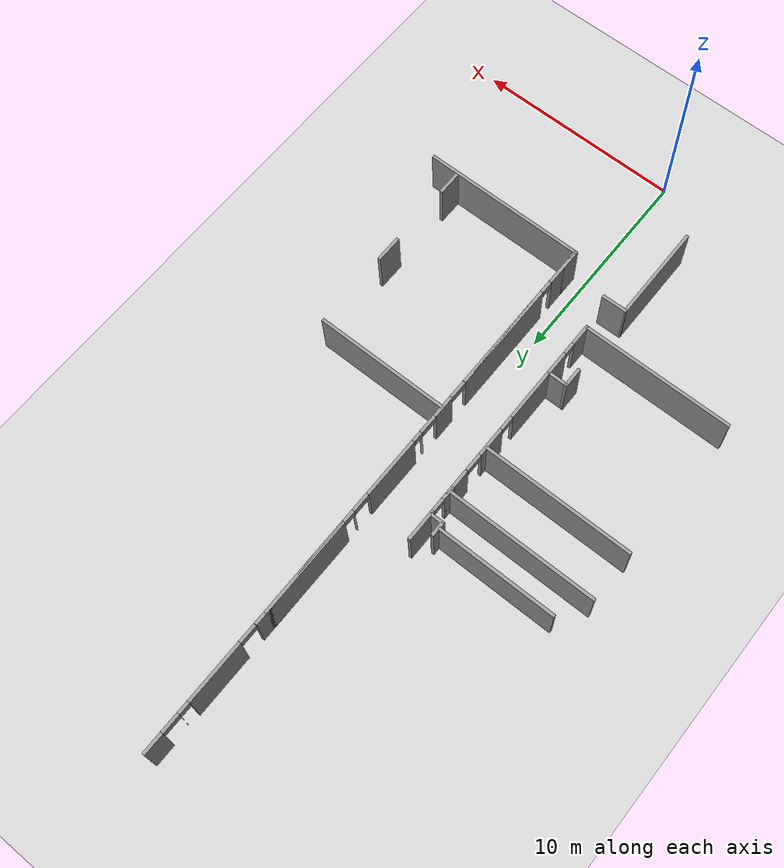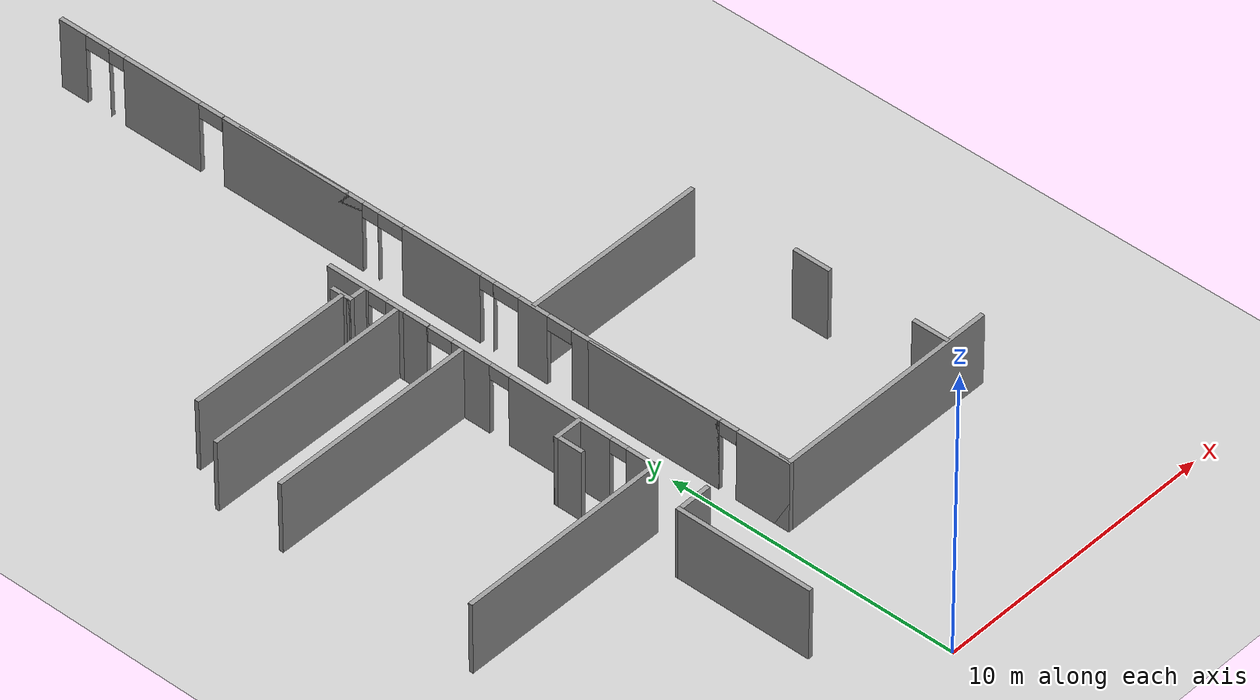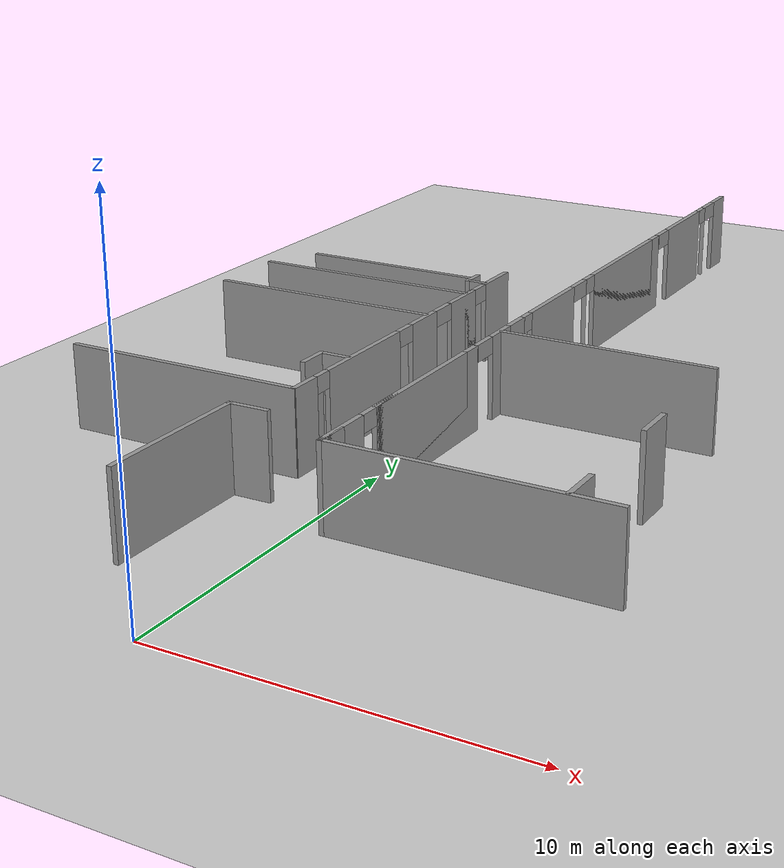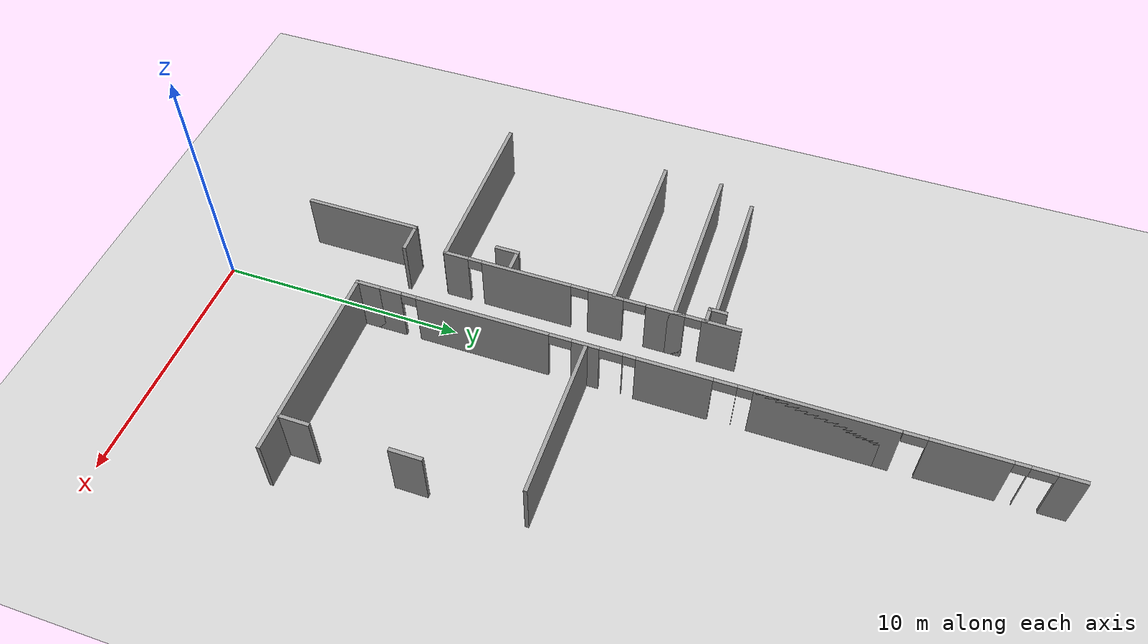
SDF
<sdf version="1.6">
 <world name="default">
  <model name="ground_plane">
   <static>1</static>
   <link name="link">
    <collision name="collision">
     <geometry><plane><normal>0 0 1</normal><size>100 100</size></plane></geometry>
     <surface>
      <contact><collide_bitmask>65535</collide_bitmask></contact>
      <friction><ode><mu>100</mu><mu2>50</mu2></ode></friction>
     </surface>
    </collision>
    <visual name="visual">
     <cast_shadows>0</cast_shadows>
     <geometry><plane><normal>0 0 1</normal><size>100 100</size></plane></geometry>
     <material>
      <script><uri>file://media/materials/scripts/gazebo.material</uri><name>Gazebo/Grey</name></script>
     </material>
    </visual>
   </link>
  </model>
  <model name="Tsudanuma_2-3-with_door">
   <pose>11.7222 12.8329 0 0 -0 0</pose>
   <link name="Wall_121">
    <collision name="Wall_121_Collision">
     <geometry><box><size>7.32925 0.15 2.5</size></box></geometry>
     <pose>0 0 1.25 0 -0 0</pose>
    </collision>
    <visual name="Wall_121_Visual">
     <pose>0 0 1.25 0 -0 0</pose>
     <geometry><box><size>7.32925 0.15 2.5</size></box></geometry>
     <material>
      <script><uri>file://media/materials/scripts/gazebo.material</uri><name>Gazebo/Grey</name></script>
      <ambient>1 1 1 1</ambient>
     </material>
     <meta><layer>0</layer></meta>
    </visual>
    <pose>-17.1797 -3.82583 0 0 -0 0</pose>
   </link>
   <link name="Wall_122">
    <pose>-13.5711 2.11814 0 0 -0 1.5708</pose>
    <visual name="Wall_122_Visual_0">
     <pose>-5.48524 0 1.25 0 -0 0</pose>
     <geometry><box><size>1.02952 0.15 2.5</size></box></geometry>
     <material>
      <script><uri>file://media/materials/scripts/gazebo.material</uri><name>Gazebo/Grey</name></script>
      <ambient>1 1 1 1</ambient>
     </material>
     <meta><layer>0</layer></meta>
    </visual>
    <collision name="Wall_122_Collision_0">
     <geometry><box><size>1.02952 0.15 2.5</size></box></geometry>
     <pose>-5.48524 0 1.25 0 -0 0</pose>
    </collision>
    <visual name="Wall_122_Visual_1">
     <pose>-2.55315 0 1.25 0 -0 0</pose>
     <geometry><box><size>3.68287 0.15 2.5</size></box></geometry>
     <material>
      <script><uri>file://media/materials/scripts/gazebo.material</uri><name>Gazebo/Grey</name></script>
      <ambient>1 1 1 1</ambient>
     </material>
     <meta><layer>0</layer></meta>
    </visual>
    <collision name="Wall_122_Collision_1">
     <geometry><box><size>3.68287 0.15 2.5</size></box></geometry>
     <pose>-2.55315 0 1.25 0 -0 0</pose>
    </collision>
    <visual name="Wall_122_Visual_2">
     <pose>0.697642 0 1.25 0 -0 0</pose>
     <geometry><box><size>1.40764 0.15 2.5</size></box></geometry>
     <material>
      <script><uri>file://media/materials/scripts/gazebo.material</uri><name>Gazebo/Grey</name></script>
      <ambient>1 1 1 1</ambient>
     </material>
     <meta><layer>0</layer></meta>
    </visual>
    <collision name="Wall_122_Collision_2">
     <geometry><box><size>1.40764 0.15 2.5</size></box></geometry>
     <pose>0.697642 0 1.25 0 -0 0</pose>
    </collision>
    <visual name="Wall_122_Visual_3">
     <pose>3.06038 0 1.25 0 -0 0</pose>
     <geometry><box><size>1.51784 0.15 2.5</size></box></geometry>
     <material>
      <script><uri>file://media/materials/scripts/gazebo.material</uri><name>Gazebo/Grey</name></script>
      <ambient>1 1 1 1</ambient>
     </material>
     <meta><layer>0</layer></meta>
    </visual>
    <collision name="Wall_122_Collision_3">
     <geometry><box><size>1.51784 0.15 2.5</size></box></geometry>
     <pose>3.06038 0 1.25 0 -0 0</pose>
    </collision>
    <visual name="Wall_122_Visual_4">
     <pose>3.49469 0 1.25 0 -0 0</pose>
     <geometry><box><size>0.649232 0.15 2.5</size></box></geometry>
     <material>
      <script><uri>file://media/materials/scripts/gazebo.material</uri><name>Gazebo/Grey</name></script>
      <ambient>1 1 1 1</ambient>
     </material>
     <meta><layer>0</layer></meta>
    </visual>
    <collision name="Wall_122_Collision_4">
     <geometry><box><size>0.649232 0.15 2.5</size></box></geometry>
     <pose>3.49469 0 1.25 0 -0 0</pose>
    </collision>
    <visual name="Wall_122_Visual_5">
     <pose>5.23649 0 1.25 0 -0 0</pose>
     <geometry><box><size>1.52702 0.15 2.5</size></box></geometry>
     <material>
      <script><uri>file://media/materials/scripts/gazebo.material</uri><name>Gazebo/Grey</name></script>
      <ambient>1 1 1 1</ambient>
     </material>
     <meta><layer>0</layer></meta>
    </visual>
    <collision name="Wall_122_Collision_5">
     <geometry><box><size>1.52702 0.15 2.5</size></box></geometry>
     <pose>5.23649 0 1.25 0 -0 0</pose>
    </collision>
    <visual name="Wall_122_Visual_6">
     <pose>-4.68253 0 2.25 0 -0 0</pose>
     <geometry><box><size>0.575893 0.15 0.5</size></box></geometry>
     <material>
      <script><uri>file://media/materials/scripts/gazebo.material</uri><name>Gazebo/Grey</name></script>
      <ambient>1 1 1 1</ambient>
     </material>
     <meta><layer>0</layer></meta>
    </visual>
    <collision name="Wall_122_Collision_6">
     <geometry><box><size>0.575893 0.15 0.5</size></box></geometry>
     <pose>-4.68253 0 2.25 0 -0 0</pose>
    </collision>
    <visual name="Wall_122_Visual_7">
     <pose>-0.358947 0 2.25 0 -0 0</pose>
     <geometry><box><size>0.705536 0.15 0.5</size></box></geometry>
     <material>
      <script><uri>file://media/materials/scripts/gazebo.material</uri><name>Gazebo/Grey</name></script>
      <ambient>1 1 1 1</ambient>
     </material>
     <meta><layer>0</layer></meta>
    </visual>
    <collision name="Wall_122_Collision_7">
     <geometry><box><size>0.705536 0.15 0.5</size></box></geometry>
     <pose>-0.358947 0 2.25 0 -0 0</pose>
    </collision>
    <visual name="Wall_122_Visual_8">
     <pose>1.83577 0 2.25 0 -0 0</pose>
     <geometry><box><size>0.868607 0.15 0.5</size></box></geometry>
     <material>
      <script><uri>file://media/materials/scripts/gazebo.material</uri><name>Gazebo/Grey</name></script>
      <ambient>1 1 1 1</ambient>
     </material>
     <meta><layer>0</layer></meta>
    </visual>
    <collision name="Wall_122_Collision_8">
     <geometry><box><size>0.868607 0.15 0.5</size></box></geometry>
     <pose>1.83577 0 2.25 0 -0 0</pose>
    </collision>
    <visual name="Wall_122_Visual_9">
     <pose>4.14614 0 2.25 0 -0 0</pose>
     <geometry><box><size>0.653679 0.15 0.5</size></box></geometry>
     <material>
      <script><uri>file://media/materials/scripts/gazebo.material</uri><name>Gazebo/Grey</name></script>
      <ambient>1 1 1 1</ambient>
     </material>
     <meta><layer>0</layer></meta>
    </visual>
    <collision name="Wall_122_Collision_9">
     <geometry><box><size>0.653679 0.15 0.5</size></box></geometry>
     <pose>4.14614 0 2.25 0 -0 0</pose>
    </collision>
    <visual name="Wall_122_Visual_10">
     <pose>4.14614 0 2.25 0 -0 0</pose>
     <geometry><box><size>0.653679 0.15 0.5</size></box></geometry>
     <material>
      <script><uri>file://media/materials/scripts/gazebo.material</uri><name>Gazebo/Grey</name></script>
      <ambient>1 1 1 1</ambient>
     </material>
     <meta><layer>0</layer></meta>
    </visual>
    <collision name="Wall_122_Collision_10">
     <geometry><box><size>0.653679 0.15 0.5</size></box></geometry>
     <pose>4.14614 0 2.25 0 -0 0</pose>
    </collision>
   </link>
   <link name="Wall_135">
    <collision name="Wall_135_Collision">
     <geometry><box><size>1 0.15 2.5</size></box></geometry>
     <pose>0 0 1.25 0 -0 0</pose>
    </collision>
    <visual name="Wall_135_Visual">
     <pose>0 0 1.25 0 -0 0</pose>
     <geometry><box><size>1 0.15 2.5</size></box></geometry>
     <material>
      <script><uri>file://media/materials/scripts/gazebo.material</uri><name>Gazebo/Grey</name></script>
      <ambient>1 1 1 1</ambient>
     </material>
     <meta><layer>0</layer></meta>
    </visual>
    <pose>-14.4819 -1.56838 0 0 -0 1.5708</pose>
   </link>
   <link name="Wall_136">
    <collision name="Wall_136_Collision">
     <geometry><box><size>1 0.15 2.5</size></box></geometry>
     <pose>0 0 1.25 0 -0 0</pose>
    </collision>
    <visual name="Wall_136_Visual">
     <pose>0 0 1.25 0 -0 0</pose>
     <geometry><box><size>1 0.15 2.5</size></box></geometry>
     <material>
      <script><uri>file://media/materials/scripts/gazebo.material</uri><name>Gazebo/Grey</name></script>
      <ambient>1 1 1 1</ambient>
     </material>
     <meta><layer>0</layer></meta>
    </visual>
    <pose>-14.0569 -1.14338 0 0 -0 0</pose>
   </link>
   <link name="Wall_158">
    <collision name="Wall_158_Collision">
     <geometry><box><size>1.25 0.15 2.5</size></box></geometry>
     <pose>0 0 1.25 0 -0 0</pose>
    </collision>
    <visual name="Wall_158_Visual">
     <pose>0 0 1.25 0 -0 0</pose>
     <geometry><box><size>1.25 0.15 2.5</size></box></geometry>
     <material>
      <script><uri>file://media/materials/scripts/gazebo.material</uri><name>Gazebo/Grey</name></script>
      <ambient>1 1 1 1</ambient>
     </material>
     <meta><layer>0</layer></meta>
    </visual>
    <pose>-13.8574 -5.4671 0 0 -0 -3.12445</pose>
   </link>
   <link name="Wall_163">
    <collision name="Wall_163_Collision">
     <geometry><box><size>4.75 0.15 2.5</size></box></geometry>
     <pose>0 0 1.25 0 -0 0</pose>
    </collision>
    <visual name="Wall_163_Visual">
     <pose>0 0 1.25 0 -0 0</pose>
     <geometry><box><size>4.75 0.15 2.5</size></box></geometry>
     <material>
      <script><uri>file://media/materials/scripts/gazebo.material</uri><name>Gazebo/Grey</name></script>
      <ambient>1 1 1 1</ambient>
     </material>
     <meta><layer>0</layer></meta>
    </visual>
    <pose>-14.4074 -7.77654 0 0 -0 -1.5708</pose>
   </link>
   <link name="Wall_173">
    <collision name="Wall_173_Collision">
     <geometry><box><size>6.5 0.15 2.5</size></box></geometry>
     <pose>0 0 1.25 0 -0 0</pose>
    </collision>
    <visual name="Wall_173_Visual">
     <pose>0 0 1.25 0 -0 0</pose>
     <geometry><box><size>6.5 0.15 2.5</size></box></geometry>
     <material>
      <script><uri>file://media/materials/scripts/gazebo.material</uri><name>Gazebo/Grey</name></script>
      <ambient>1 1 1 1</ambient>
     </material>
     <meta><layer>0</layer></meta>
    </visual>
    <pose>-7.81856 2.84875 0 0 -0 0</pose>
   </link>
   <link name="Wall_427">
    <collision name="Wall_427_Collision">
     <geometry><box><size>1.25 0.15 2.5</size></box></geometry>
     <pose>0 0 1.25 0 -0 0</pose>
    </collision>
    <visual name="Wall_427_Visual">
     <pose>0 0 1.25 0 -0 0</pose>
     <geometry><box><size>1.25 0.15 2.5</size></box></geometry>
     <material>
      <script><uri>file://media/materials/scripts/gazebo.material</uri><name>Gazebo/Grey</name></script>
      <ambient>1 1 1 1</ambient>
     </material>
     <meta><layer>0</layer></meta>
    </visual>
    <pose>-4.58021 -5.82388 0 0 -0 1.5708</pose>
   </link>
   <link name="Wall_431">
    <collision name="Wall_431_Collision">
     <geometry><box><size>1.3 0.15 2.5</size></box></geometry>
     <pose>0 0 1.25 0 -0 0</pose>
    </collision>
    <visual name="Wall_431_Visual">
     <pose>0 0 1.25 0 -0 0</pose>
     <geometry><box><size>1.3 0.15 2.5</size></box></geometry>
     <material>
      <script><uri>file://media/materials/scripts/gazebo.material</uri><name>Gazebo/Grey</name></script>
      <ambient>1 1 1 1</ambient>
     </material>
     <meta><layer>0</layer></meta>
    </visual>
    <pose>-4.58533 -1.53514 0 0 -0 1.5708</pose>
   </link>
   <link name="Wall_511">
    <collision name="Wall_511_Collision">
     <geometry><box><size>7.25 0.15 2.5</size></box></geometry>
     <pose>0 0 1.25 0 -0 0</pose>
    </collision>
    <visual name="Wall_511_Visual">
     <pose>0 0 1.25 0 -0 0</pose>
     <geometry><box><size>7.25 0.15 2.5</size></box></geometry>
     <material>
      <script><uri>file://media/materials/scripts/gazebo.material</uri><name>Gazebo/Grey</name></script>
      <ambient>1 1 1 1</ambient>
     </material>
     <meta><layer>0</layer></meta>
    </visual>
    <pose>-17.2038 3.11898 0 0 -0 0</pose>
   </link>
   <link name="Wall_515">
    <collision name="Wall_515_Collision">
     <geometry><box><size>7.25 0.15 2.5</size></box></geometry>
     <pose>0 0 1.25 0 -0 0</pose>
    </collision>
    <visual name="Wall_515_Visual">
     <pose>0 0 1.25 0 -0 0</pose>
     <geometry><box><size>7.25 0.15 2.5</size></box></geometry>
     <material>
      <script><uri>file://media/materials/scripts/gazebo.material</uri><name>Gazebo/Grey</name></script>
      <ambient>1 1 1 1</ambient>
     </material>
     <meta><layer>0</layer></meta>
    </visual>
    <pose>-17.1744 5.52177 0 0 -0 0</pose>
   </link>
   <link name="Wall_517">
    <collision name="Wall_517_Collision">
     <geometry><box><size>5.75 0.15 2.5</size></box></geometry>
     <pose>0 0 1.25 0 -0 0</pose>
    </collision>
    <visual name="Wall_517_Visual">
     <pose>0 0 1.25 0 -0 0</pose>
     <geometry><box><size>5.75 0.15 2.5</size></box></geometry>
     <material>
      <script><uri>file://media/materials/scripts/gazebo.material</uri><name>Gazebo/Grey</name></script>
      <ambient>1 1 1 1</ambient>
     </material>
     <meta><layer>0</layer></meta>
    </visual>
    <pose>-17.0841 7.01061 0 0 -0 0</pose>
   </link>
   <link name="Wall_524">
    <collision name="Wall_524_Collision">
     <geometry><box><size>0.75 0.15 2.5</size></box></geometry>
     <pose>0 0 1.25 0 -0 0</pose>
    </collision>
    <visual name="Wall_524_Visual">
     <pose>0 0 1.25 0 -0 0</pose>
     <geometry><box><size>0.75 0.15 2.5</size></box></geometry>
     <material>
      <script><uri>file://media/materials/scripts/gazebo.material</uri><name>Gazebo/Grey</name></script>
      <ambient>1 1 1 1</ambient>
     </material>
     <meta><layer>0</layer></meta>
    </visual>
    <pose>-14.1897 7.04966 0 0 -0 -1.5708</pose>
   </link>
   <link name="Wall_525">
    <collision name="Wall_525_Collision">
     <geometry><box><size>0.75 0.15 2.5</size></box></geometry>
     <pose>0 0 1.25 0 -0 0</pose>
    </collision>
    <visual name="Wall_525_Visual">
     <pose>0 0 1.25 0 -0 0</pose>
     <geometry><box><size>0.75 0.15 2.5</size></box></geometry>
     <material>
      <script><uri>file://media/materials/scripts/gazebo.material</uri><name>Gazebo/Grey</name></script>
      <ambient>1 1 1 1</ambient>
     </material>
     <meta><layer>0</layer></meta>
    </visual>
    <pose>-13.8897 6.74966 0 0 -0 0</pose>
   </link>
   <link name="Wall_72">
    <pose>-11.0721 7.11004 0 0 -0 -1.5708</pose>
    <visual name="Wall_72_Visual_0">
     <pose>-13.1162 0 1.25 0 -0 0</pose>
     <geometry><box><size>1.01758 0.15 2.5</size></box></geometry>
     <material>
      <script><uri>file://media/materials/scripts/gazebo.material</uri><name>Gazebo/Grey</name></script>
      <ambient>1 1 1 1</ambient>
     </material>
     <meta><layer>0</layer></meta>
    </visual>
    <collision name="Wall_72_Collision_0">
     <geometry><box><size>1.01758 0.15 2.5</size></box></geometry>
     <pose>-13.1162 0 1.25 0 -0 0</pose>
    </collision>
    <visual name="Wall_72_Visual_1">
     <pose>-11.7069 0 1.25 0 -0 0</pose>
     <geometry><box><size>0.001019 0.15 2.5</size></box></geometry>
     <material>
      <script><uri>file://media/materials/scripts/gazebo.material</uri><name>Gazebo/Grey</name></script>
      <ambient>1 1 1 1</ambient>
     </material>
     <meta><layer>0</layer></meta>
    </visual>
    <collision name="Wall_72_Collision_1">
     <geometry><box><size>0.001019 0.15 2.5</size></box></geometry>
     <pose>-11.7069 0 1.25 0 -0 0</pose>
    </collision>
    <visual name="Wall_72_Visual_2">
     <pose>-9.69096 0 1.25 0 -0 0</pose>
     <geometry><box><size>2.90502 0.15 2.5</size></box></geometry>
     <material>
      <script><uri>file://media/materials/scripts/gazebo.material</uri><name>Gazebo/Grey</name></script>
      <ambient>1 1 1 1</ambient>
     </material>
     <meta><layer>0</layer></meta>
    </visual>
    <collision name="Wall_72_Collision_2">
     <geometry><box><size>2.90502 0.15 2.5</size></box></geometry>
     <pose>-9.69096 0 1.25 0 -0 0</pose>
    </collision>
    <visual name="Wall_72_Visual_3">
     <pose>-4.69323 0 1.25 0 -0 0</pose>
     <geometry><box><size>5.29044 0.15 2.5</size></box></geometry>
     <material>
      <script><uri>file://media/materials/scripts/gazebo.material</uri><name>Gazebo/Grey</name></script>
      <ambient>1 1 1 1</ambient>
     </material>
     <meta><layer>0</layer></meta>
    </visual>
    <collision name="Wall_72_Collision_3">
     <geometry><box><size>5.29044 0.15 2.5</size></box></geometry>
     <pose>-4.69323 0 1.25 0 -0 0</pose>
    </collision>
    <visual name="Wall_72_Visual_4">
     <pose>-4.40478 0 1.25 0 -0 0</pose>
     <geometry><box><size>4.71353 0.15 2.5</size></box></geometry>
     <material>
      <script><uri>file://media/materials/scripts/gazebo.material</uri><name>Gazebo/Grey</name></script>
      <ambient>1 1 1 1</ambient>
     </material>
     <meta><layer>0</layer></meta>
    </visual>
    <collision name="Wall_72_Collision_4">
     <geometry><box><size>4.71353 0.15 2.5</size></box></geometry>
     <pose>-4.40478 0 1.25 0 -0 0</pose>
    </collision>
    <visual name="Wall_72_Visual_5">
     <pose>-1.45865 0 1.25 0 -0 0</pose>
     <geometry><box><size>0.001018 0.15 2.5</size></box></geometry>
     <material>
      <script><uri>file://media/materials/scripts/gazebo.material</uri><name>Gazebo/Grey</name></script>
      <ambient>1 1 1 1</ambient>
     </material>
     <meta><layer>0</layer></meta>
    </visual>
    <collision name="Wall_72_Collision_5">
     <geometry><box><size>0.001018 0.15 2.5</size></box></geometry>
     <pose>-1.45865 0 1.25 0 -0 0</pose>
    </collision>
    <visual name="Wall_72_Visual_6">
     <pose>0.89437 0 1.25 0 -0 0</pose>
     <geometry><box><size>2.90502 0.15 2.5</size></box></geometry>
     <material>
      <script><uri>file://media/materials/scripts/gazebo.material</uri><name>Gazebo/Grey</name></script>
      <ambient>1 1 1 1</ambient>
     </material>
     <meta><layer>0</layer></meta>
    </visual>
    <collision name="Wall_72_Collision_6">
     <geometry><box><size>2.90502 0.15 2.5</size></box></geometry>
     <pose>0.89437 0 1.25 0 -0 0</pose>
    </collision>
    <visual name="Wall_72_Visual_7">
     <pose>2.84549 0 1.25 0 -0 0</pose>
     <geometry><box><size>0.001017 0.15 2.5</size></box></geometry>
     <material>
      <script><uri>file://media/materials/scripts/gazebo.material</uri><name>Gazebo/Grey</name></script>
      <ambient>1 1 1 1</ambient>
     </material>
     <meta><layer>0</layer></meta>
    </visual>
    <collision name="Wall_72_Collision_7">
     <geometry><box><size>0.001017 0.15 2.5</size></box></geometry>
     <pose>2.84549 0 1.25 0 -0 0</pose>
    </collision>
    <visual name="Wall_72_Visual_8">
     <pose>4.28777 0 1.25 0 -0 0</pose>
     <geometry><box><size>1.08353 0.15 2.5</size></box></geometry>
     <material>
      <script><uri>file://media/materials/scripts/gazebo.material</uri><name>Gazebo/Grey</name></script>
      <ambient>1 1 1 1</ambient>
     </material>
     <meta><layer>0</layer></meta>
    </visual>
    <collision name="Wall_72_Collision_8">
     <geometry><box><size>1.08353 0.15 2.5</size></box></geometry>
     <pose>4.28777 0 1.25 0 -0 0</pose>
    </collision>
    <visual name="Wall_72_Visual_9">
     <pose>8.41365 0 1.25 0 -0 0</pose>
     <geometry><box><size>5.36823 0.15 2.5</size></box></geometry>
     <material>
      <script><uri>file://media/materials/scripts/gazebo.material</uri><name>Gazebo/Grey</name></script>
      <ambient>1 1 1 1</ambient>
     </material>
     <meta><layer>0</layer></meta>
    </visual>
    <collision name="Wall_72_Collision_9">
     <geometry><box><size>5.36823 0.15 2.5</size></box></geometry>
     <pose>8.41365 0 1.25 0 -0 0</pose>
    </collision>
    <visual name="Wall_72_Visual_10">
     <pose>8.71507 0 1.25 0 -0 0</pose>
     <geometry><box><size>4.76539 0.15 2.5</size></box></geometry>
     <material>
      <script><uri>file://media/materials/scripts/gazebo.material</uri><name>Gazebo/Grey</name></script>
      <ambient>1 1 1 1</ambient>
     </material>
     <meta><layer>0</layer></meta>
    </visual>
    <collision name="Wall_72_Collision_10">
     <geometry><box><size>4.76539 0.15 2.5</size></box></geometry>
     <pose>8.71507 0 1.25 0 -0 0</pose>
    </collision>
    <visual name="Wall_72_Visual_11">
     <pose>12.6688 0 1.25 0 -0 0</pose>
     <geometry><box><size>1.91245 0.15 2.5</size></box></geometry>
     <material>
      <script><uri>file://media/materials/scripts/gazebo.material</uri><name>Gazebo/Grey</name></script>
      <ambient>1 1 1 1</ambient>
     </material>
     <meta><layer>0</layer></meta>
    </visual>
    <collision name="Wall_72_Collision_11">
     <geometry><box><size>1.91245 0.15 2.5</size></box></geometry>
     <pose>12.6688 0 1.25 0 -0 0</pose>
    </collision>
    <visual name="Wall_72_Visual_12">
     <pose>13.1128 0 1.25 0 -0 0</pose>
     <geometry><box><size>1.02439 0.15 2.5</size></box></geometry>
     <material>
      <script><uri>file://media/materials/scripts/gazebo.material</uri><name>Gazebo/Grey</name></script>
      <ambient>1 1 1 1</ambient>
     </material>
     <meta><layer>0</layer></meta>
    </visual>
    <collision name="Wall_72_Collision_12">
     <geometry><box><size>1.02439 0.15 2.5</size></box></geometry>
     <pose>13.1128 0 1.25 0 -0 0</pose>
    </collision>
    <visual name="Wall_72_Visual_13">
     <pose>-12.1574 0 2.25 0 -0 0</pose>
     <geometry><box><size>0.9 0.15 0.5</size></box></geometry>
     <material>
      <script><uri>file://media/materials/scripts/gazebo.material</uri><name>Gazebo/Grey</name></script>
      <ambient>1 1 1 1</ambient>
     </material>
     <meta><layer>0</layer></meta>
    </visual>
    <collision name="Wall_72_Collision_13">
     <geometry><box><size>0.9 0.15 0.5</size></box></geometry>
     <pose>-12.1574 0 2.25 0 -0 0</pose>
    </collision>
    <visual name="Wall_72_Visual_14">
     <pose>-11.4249 0 2.25 0 -0 0</pose>
     <geometry><box><size>0.562929 0.15 0.5</size></box></geometry>
     <material>
      <script><uri>file://media/materials/scripts/gazebo.material</uri><name>Gazebo/Grey</name></script>
      <ambient>1 1 1 1</ambient>
     </material>
     <meta><layer>0</layer></meta>
    </visual>
    <collision name="Wall_72_Collision_14">
     <geometry><box><size>0.562929 0.15 0.5</size></box></geometry>
     <pose>-11.4249 0 2.25 0 -0 0</pose>
    </collision>
    <visual name="Wall_72_Visual_15">
     <pose>-7.80091 0 2.25 0 -0 0</pose>
     <geometry><box><size>0.875089 0.15 0.5</size></box></geometry>
     <material>
      <script><uri>file://media/materials/scripts/gazebo.material</uri><name>Gazebo/Grey</name></script>
      <ambient>1 1 1 1</ambient>
     </material>
     <meta><layer>0</layer></meta>
    </visual>
    <collision name="Wall_72_Collision_15">
     <geometry><box><size>0.875089 0.15 0.5</size></box></geometry>
     <pose>-7.80091 0 2.25 0 -0 0</pose>
    </collision>
    <visual name="Wall_72_Visual_16">
     <pose>-1.75358 0 2.25 0 -0 0</pose>
     <geometry><box><size>0.588857 0.15 0.5</size></box></geometry>
     <material>
      <script><uri>file://media/materials/scripts/gazebo.material</uri><name>Gazebo/Grey</name></script>
      <ambient>1 1 1 1</ambient>
     </material>
     <meta><layer>0</layer></meta>
    </visual>
    <collision name="Wall_72_Collision_16">
     <geometry><box><size>0.588857 0.15 0.5</size></box></geometry>
     <pose>-1.75358 0 2.25 0 -0 0</pose>
    </collision>
    <visual name="Wall_72_Visual_17">
     <pose>-1.75358 0 2.25 0 -0 0</pose>
     <geometry><box><size>0.588857 0.15 0.5</size></box></geometry>
     <material>
      <script><uri>file://media/materials/scripts/gazebo.material</uri><name>Gazebo/Grey</name></script>
      <ambient>1 1 1 1</ambient>
     </material>
     <meta><layer>0</layer></meta>
    </visual>
    <collision name="Wall_72_Collision_17">
     <geometry><box><size>0.588857 0.15 0.5</size></box></geometry>
     <pose>-1.75358 0 2.25 0 -0 0</pose>
    </collision>
    <visual name="Wall_72_Visual_18">
     <pose>-1.00814 0 2.25 0 -0 0</pose>
     <geometry><box><size>0.9 0.15 0.5</size></box></geometry>
     <material>
      <script><uri>file://media/materials/scripts/gazebo.material</uri><name>Gazebo/Grey</name></script>
      <ambient>1 1 1 1</ambient>
     </material>
     <meta><layer>0</layer></meta>
    </visual>
    <collision name="Wall_72_Collision_18">
     <geometry><box><size>0.9 0.15 0.5</size></box></geometry>
     <pose>-1.00814 0 2.25 0 -0 0</pose>
    </collision>
    <visual name="Wall_72_Visual_19">
     <pose>2.59593 0 2.25 0 -0 0</pose>
     <geometry><box><size>0.498107 0.15 0.5</size></box></geometry>
     <material>
      <script><uri>file://media/materials/scripts/gazebo.material</uri><name>Gazebo/Grey</name></script>
      <ambient>1 1 1 1</ambient>
     </material>
     <meta><layer>0</layer></meta>
    </visual>
    <collision name="Wall_72_Collision_19">
     <geometry><box><size>0.498107 0.15 0.5</size></box></geometry>
     <pose>2.59593 0 2.25 0 -0 0</pose>
    </collision>
    <visual name="Wall_72_Visual_20">
     <pose>3.296 0 2.25 0 -0 0</pose>
     <geometry><box><size>0.9 0.15 0.5</size></box></geometry>
     <material>
      <script><uri>file://media/materials/scripts/gazebo.material</uri><name>Gazebo/Grey</name></script>
      <ambient>1 1 1 1</ambient>
     </material>
     <meta><layer>0</layer></meta>
    </visual>
    <collision name="Wall_72_Collision_20">
     <geometry><box><size>0.9 0.15 0.5</size></box></geometry>
     <pose>3.296 0 2.25 0 -0 0</pose>
    </collision>
    <visual name="Wall_72_Visual_21">
     <pose>5.27356 0 2.25 0 -0 0</pose>
     <geometry><box><size>0.888053 0.15 0.5</size></box></geometry>
     <material>
      <script><uri>file://media/materials/scripts/gazebo.material</uri><name>Gazebo/Grey</name></script>
      <ambient>1 1 1 1</ambient>
     </material>
     <meta><layer>0</layer></meta>
    </visual>
    <collision name="Wall_72_Collision_21">
     <geometry><box><size>0.888053 0.15 0.5</size></box></geometry>
     <pose>5.27356 0 2.25 0 -0 0</pose>
    </collision>
    <visual name="Wall_72_Visual_22">
     <pose>11.3992 0 2.25 0 -0 0</pose>
     <geometry><box><size>0.602839 0.15 0.5</size></box></geometry>
     <material>
      <script><uri>file://media/materials/scripts/gazebo.material</uri><name>Gazebo/Grey</name></script>
      <ambient>1 1 1 1</ambient>
     </material>
     <meta><layer>0</layer></meta>
    </visual>
    <collision name="Wall_72_Collision_22">
     <geometry><box><size>0.602839 0.15 0.5</size></box></geometry>
     <pose>11.3992 0 2.25 0 -0 0</pose>
    </collision>
    <visual name="Wall_72_Visual_23">
     <pose>11.3992 0 2.25 0 -0 0</pose>
     <geometry><box><size>0.602839 0.15 0.5</size></box></geometry>
     <material>
      <script><uri>file://media/materials/scripts/gazebo.material</uri><name>Gazebo/Grey</name></script>
      <ambient>1 1 1 1</ambient>
     </material>
     <meta><layer>0</layer></meta>
    </visual>
    <collision name="Wall_72_Collision_23">
     <geometry><box><size>0.602839 0.15 0.5</size></box></geometry>
     <pose>11.3992 0 2.25 0 -0 0</pose>
    </collision>
   </link>
   <link name="Wall_73">
    <collision name="Wall_73_Collision">
     <geometry><box><size>8 0.15 2.5</size></box></geometry>
     <pose>0 0 1.25 0 -0 0</pose>
    </collision>
    <visual name="Wall_73_Visual">
     <pose>0 0 1.25 0 -0 0</pose>
     <geometry><box><size>8 0.15 2.5</size></box></geometry>
     <material>
      <script><uri>file://media/materials/scripts/gazebo.material</uri><name>Gazebo/Grey</name></script>
      <ambient>1 1 1 1</ambient>
     </material>
     <meta><layer>0</layer></meta>
    </visual>
    <pose>-7.14706 -6.43996 0 0 -0 0</pose>
   </link>
   <static>1</static>
  </model>
 </world>
</sdf>
